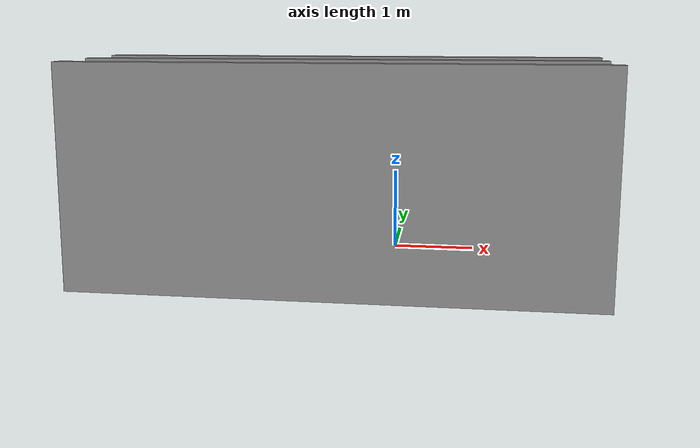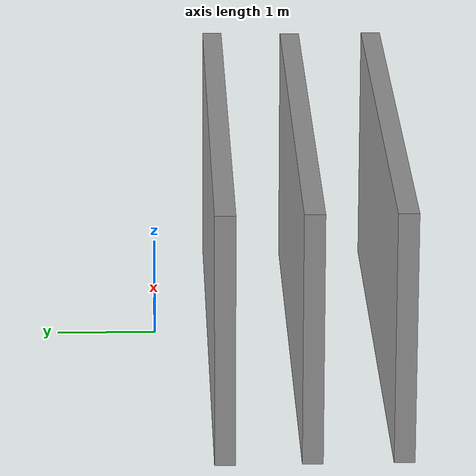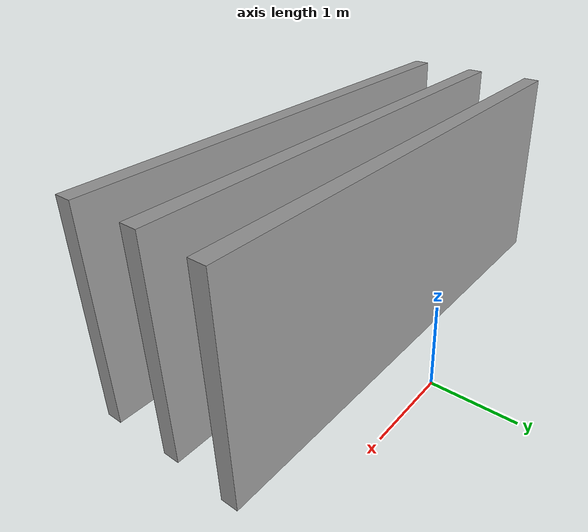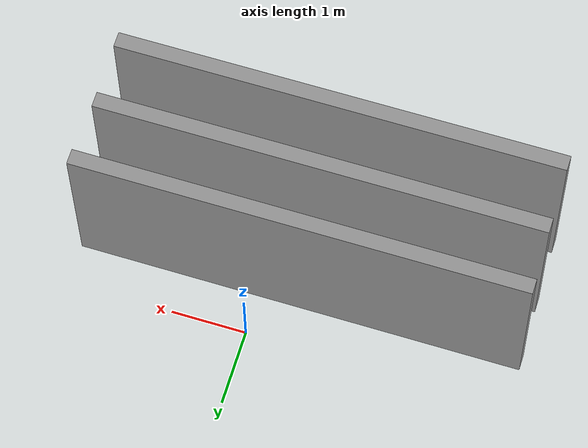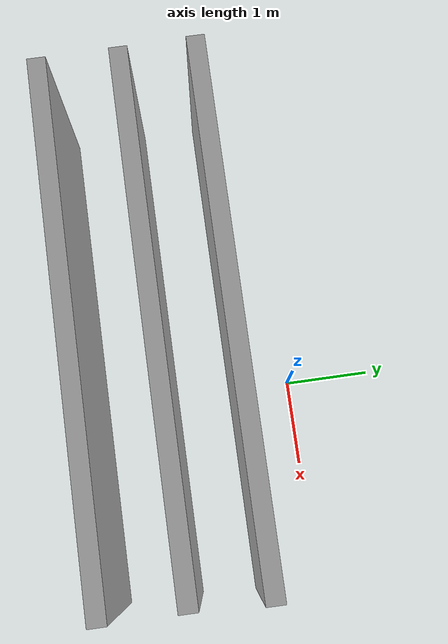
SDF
<?xml version='1.0'?>
<sdf version='1.4'>
  <model name='cornrow'>
    <link name='Wall_0'>
      <collision name='Wall_0_Collision'>
        <geometry>
          <box>
            <size>5.84 0.2 2.5</size>
          </box>
        </geometry>
        <pose>0 0 1.25 0 -0 0</pose>
      </collision>
      <visual name='Wall_0_Visual'>
        <pose>0 0 1.25 0 -0 0</pose>
        <geometry>
          <box>
            <size>5.84 0.2 2.5</size>
          </box>
        </geometry>
        <material>
          <script>
            <uri>file://media/materials/scripts/gazebo.material</uri>
            <name>Gazebo/Grey</name>
          </script>
        </material>
      </visual>
      <velocity_decay>
        <linear>0</linear>
        <angular>0</angular>
      </velocity_decay>
      <pose>-0.54 -2.34 0 0 -0 0</pose>
    </link>
    <link name='Wall_2'>
      <collision name='Wall_2_Collision'>
        <geometry>
          <box>
            <size>5.84 0.2 2.5</size>
          </box>
        </geometry>
        <pose>0 0 1.25 0 -0 0</pose>
      </collision>
      <visual name='Wall_2_Visual'>
        <pose>0 0 1.25 0 -0 0</pose>
        <geometry>
          <box>
            <size>5.84 0.2 2.5</size>
          </box>
        </geometry>
        <material>
          <script>
            <uri>file://media/materials/scripts/gazebo.material</uri>
            <name>Gazebo/Grey</name>
          </script>
        </material>
      </visual>
      <velocity_decay>
        <linear>0</linear>
        <angular>0</angular>
      </velocity_decay>
      <pose>-0.55 -1.47 0 0 -0 3.14159</pose>
    </link>
    <link name='Wall_4'>
      <collision name='Wall_4_Collision'>
        <geometry>
          <box>
            <size>5.9 0.2 2.5</size>
          </box>
        </geometry>
        <pose>0 0 1.25 0 -0 0</pose>
      </collision>
      <visual name='Wall_4_Visual'>
        <pose>0 0 1.25 0 -0 0</pose>
        <geometry>
          <box>
            <size>5.9 0.2 2.5</size>
          </box>
        </geometry>
        <material>
          <script>
            <uri>file://media/materials/scripts/gazebo.material</uri>
            <name>Gazebo/Grey</name>
          </script>
        </material>
      </visual>
      <velocity_decay>
        <linear>0</linear>
        <angular>0</angular>
      </velocity_decay>
      <pose>-0.54 -0.64 0 0 -0 3.14159</pose>
    </link>
    <static>1</static>
  </model>
</sdf>
